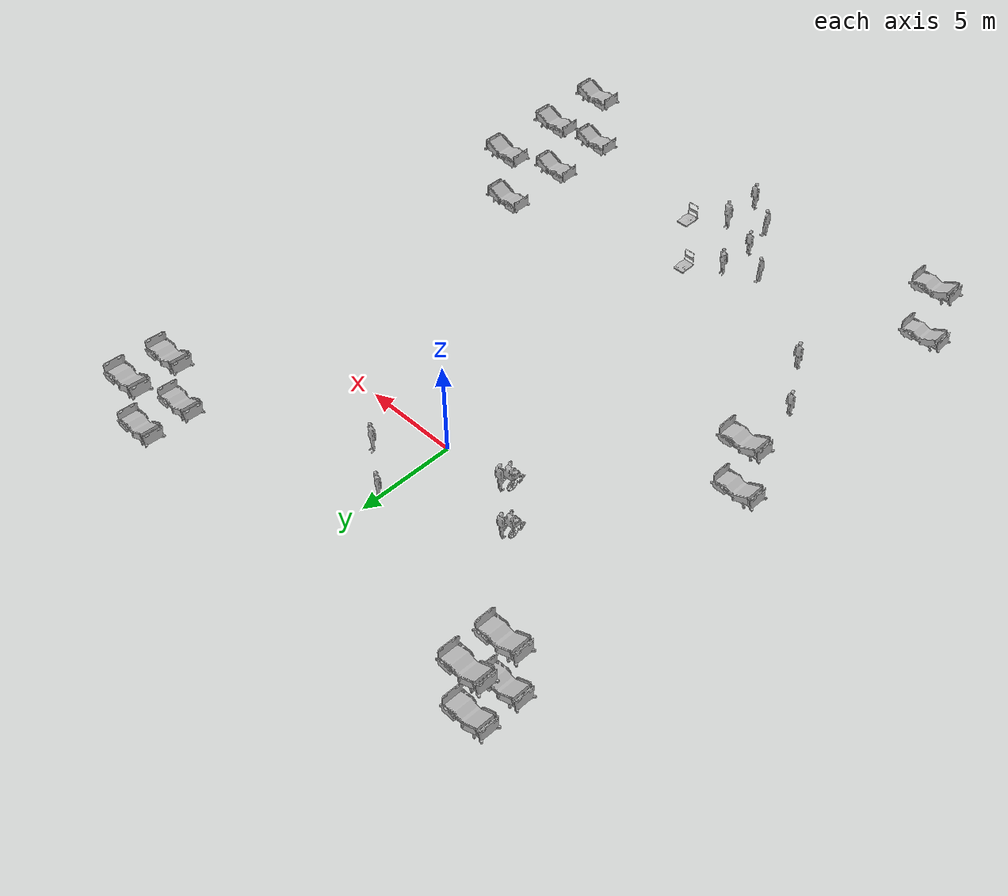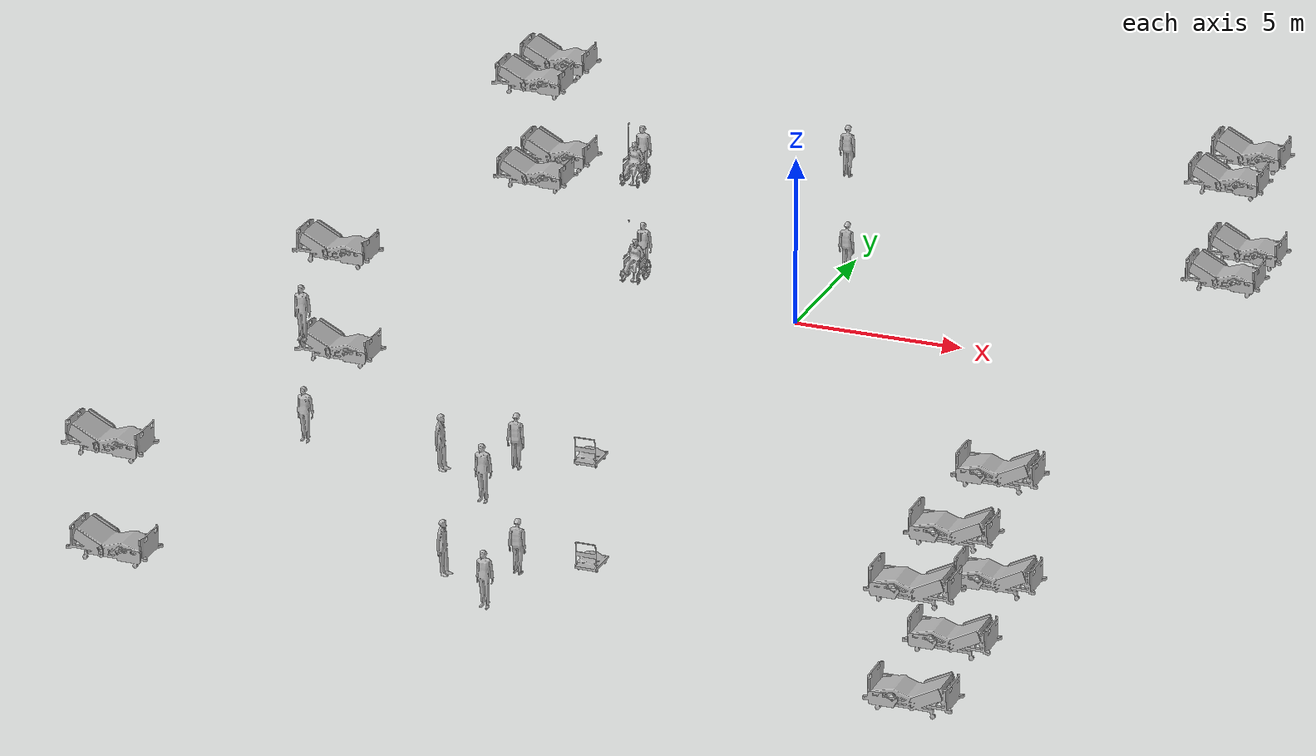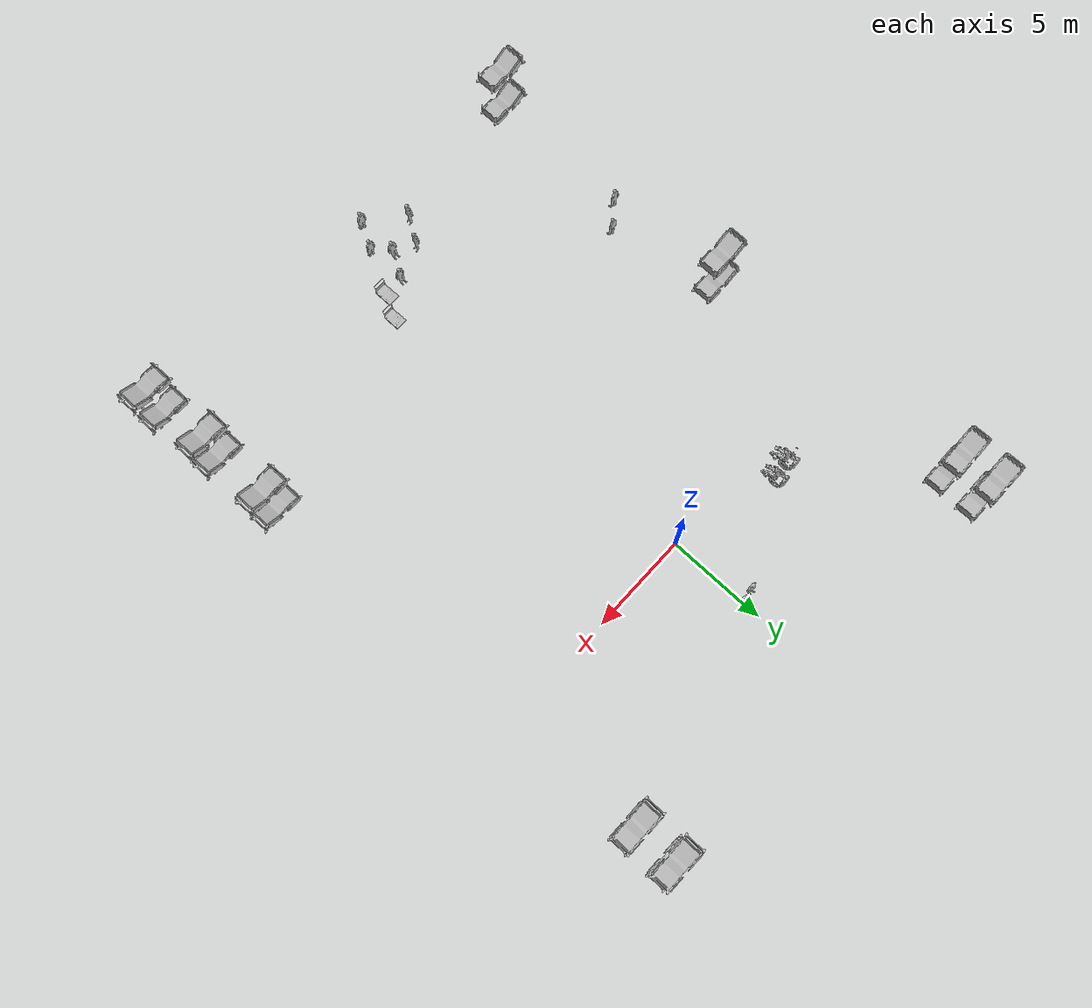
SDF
<sdf version="1.6">
 <world name="world">
  <gravity>0 0 -9.8</gravity>
  <physics default="0" name="default_physics" type="ode">
   <max_step_size>0.001</max_step_size>
   <real_time_factor>1</real_time_factor>
   <real_time_update_rate>1000</real_time_update_rate>
  </physics>
  <model name="CGMClassic_1">
   <include><uri>model://CGMClassic</uri></include>
   <pose>11.1777 -18.4129 0 0 0 -1.5656</pose>
  </model>
  <model name="CGMClassic_2">
   <include><uri>model://CGMClassic</uri></include>
   <pose>11.1179 -14.6493 0 0 0 -1.5656</pose>
  </model>
  <model name="OpScrubs_1">
   <include><uri>model://OpScrubs</uri></include>
   <pose>-9.61916 -12.5112 0 0 -0 0</pose>
  </model>
  <model name="OpScrubs_2">
   <include><uri>model://OpScrubs</uri></include>
   <pose>0.054597 4.05849 0 0 -0 3.12413</pose>
  </model>
  <model name="PatientWheelChair_1">
   <include><uri>model://PatientWheelChair</uri></include>
   <pose>-5.46091 1.23577 0 0 -0 0</pose>
  </model>
  <model name="OpScrubs_3">
   <include><uri>model://OpScrubs</uri></include>
   <pose>-5.38513 1.82526 0 0 -0 0</pose>
  </model>
  <model name="CGMClassic_3">
   <include><uri>model://CGMClassic</uri></include>
   <pose>-11.2304 -21.1134 0 0 -0 1.56641</pose>
  </model>
  <model name="CGMClassic_4">
   <include><uri>model://CGMClassic</uri></include>
   <pose>-11.0878 -7.00992 0 0 -0 1.56296</pose>
  </model>
  <model name="CGMClassic_5">
   <include><uri>model://CGMClassic</uri></include>
   <pose>-11.0106 8.9505 -0.008203 0.0004 -0.035019 1.56285</pose>
  </model>
  <model name="CGMClassic_6">
   <include><uri>model://CGMClassic</uri></include>
   <pose>-11.025 7.10335 0 0 -0.035021 1.57427</pose>
  </model>
  <model name="OpScrubs_4">
   <include><uri>model://OpScrubs</uri></include>
   <pose>-0.93616 -18.2252 0 0 0 -3.12479</pose>
  </model>
  <model name="OpScrubs_5">
   <include><uri>model://OpScrubs</uri></include>
   <pose>-2.66275 -18.9847 0 0 -0 1.57704</pose>
  </model>
  <model name="CGMClassic_7">
   <include><uri>model://CGMClassic</uri></include>
   <pose>10.6166 9.06291 -0.008203 0.0004 -0.035019 1.56285</pose>
  </model>
  <model name="CGMClassic_8">
   <include><uri>model://CGMClassic</uri></include>
   <pose>10.6006 6.90956 -0.008203 0.0004 -0.035019 1.56285</pose>
  </model>
  <model name="ParkingTrolleyMin_1">
   <include><uri>model://ParkingTrolleyMin</uri></include>
   <pose>0.715846 -17.1496 -0.000111 0 -0 0</pose>
  </model>
  <model name="OpScrubs_6">
   <include><uri>model://OpScrubs</uri></include>
   <pose>-0.947112 -20.3884 0 0 -0 0</pose>
  </model>
  <model name="CGMClassic_9">
   <include><uri>model://CGMClassic</uri></include>
   <pose>11.3613 -21.8867 0 0 0 -1.5656</pose>
  </model>
  <light name="ceiling_light_0" type="spot">
   <pose>-0.194533 13.8034 2.8 0 -0 0</pose>
   <diffuse>0.494118 0.494118 0.494118 1</diffuse>
   <specular>0.0941176 0.0941176 0.0941176 1</specular>
   <direction>0 0 -1</direction>
   <attenuation>
    <range>20</range>
    <constant>0.8</constant>
    <linear>0.1</linear>
    <quadratic>0.001</quadratic>
   </attenuation>
   <cast_shadows>0</cast_shadows>
   <spot><inner_angle>1.0</inner_angle><outer_angle>2.5</outer_angle><falloff>1</falloff></spot>
  </light>
  <light name="ceiling_light_1" type="spot">
   <pose>6.30005 8.9551 2.8 0 -0 0</pose>
   <diffuse>0.494118 0.494118 0.494118 1</diffuse>
   <specular>0.0941176 0.0941176 0.0941176 1</specular>
   <direction>0 0 -1</direction>
   <attenuation>
    <range>20</range>
    <constant>0.8</constant>
    <linear>0.1</linear>
    <quadratic>0.001</quadratic>
   </attenuation>
   <cast_shadows>0</cast_shadows>
   <spot><inner_angle>1.0</inner_angle><outer_angle>2.5</outer_angle><falloff>1</falloff></spot>
  </light>
  <light name="ceiling_light_2" type="spot">
   <pose>0.212387 2.1354 2.8 0 -0 0</pose>
   <diffuse>0.494118 0.494118 0.494118 1</diffuse>
   <specular>0.0941176 0.0941176 0.0941176 1</specular>
   <direction>0 0 -1</direction>
   <attenuation>
    <range>20</range>
    <constant>0.8</constant>
    <linear>0.1</linear>
    <quadratic>0.001</quadratic>
   </attenuation>
   <cast_shadows>0</cast_shadows>
   <spot><inner_angle>1.0</inner_angle><outer_angle>2.5</outer_angle><falloff>1</falloff></spot>
  </light>
  <light name="ceiling_light_3" type="spot">
   <pose>-5.81057 7.18327 2.8 0 -0 0</pose>
   <diffuse>0.494118 0.494118 0.494118 1</diffuse>
   <specular>0.0941176 0.0941176 0.0941176 1</specular>
   <direction>0 0 -1</direction>
   <attenuation>
    <range>20</range>
    <constant>0.8</constant>
    <linear>0.1</linear>
    <quadratic>0.001</quadratic>
   </attenuation>
   <cast_shadows>0</cast_shadows>
   <spot><inner_angle>1.0</inner_angle><outer_angle>2.5</outer_angle><falloff>1</falloff></spot>
  </light>
  <light name="ceiling_light_4" type="spot">
   <pose>-4.54396 -3.67312 2.8 0 -0 0</pose>
   <diffuse>0.494118 0.494118 0.494118 1</diffuse>
   <specular>0.0941176 0.0941176 0.0941176 1</specular>
   <direction>0 0 -1</direction>
   <attenuation>
    <range>20</range>
    <constant>0.8</constant>
    <linear>0.1</linear>
    <quadratic>0.001</quadratic>
   </attenuation>
   <cast_shadows>0</cast_shadows>
   <spot><inner_angle>1.0</inner_angle><outer_angle>2.5</outer_angle><falloff>1</falloff></spot>
  </light>
  <light name="ceiling_light_5" type="spot">
   <pose>-4.37087 -14.4782 2.8 0 -0 0</pose>
   <diffuse>0.494118 0.494118 0.494118 1</diffuse>
   <specular>0.0941176 0.0941176 0.0941176 1</specular>
   <direction>0 0 -1</direction>
   <attenuation>
    <range>20</range>
    <constant>0.8</constant>
    <linear>0.1</linear>
    <quadratic>0.001</quadratic>
   </attenuation>
   <cast_shadows>0</cast_shadows>
   <spot><inner_angle>1.0</inner_angle><outer_angle>2.5</outer_angle><falloff>1</falloff></spot>
  </light>
  <light name="ceiling_light_6" type="spot">
   <pose>-4.39457 -24.5382 2.8 0 -0 0</pose>
   <diffuse>0.494118 0.494118 0.494118 1</diffuse>
   <specular>0.0941176 0.0941176 0.0941176 1</specular>
   <direction>0 0 -1</direction>
   <attenuation>
    <range>20</range>
    <constant>0.8</constant>
    <linear>0.1</linear>
    <quadratic>0.001</quadratic>
   </attenuation>
   <cast_shadows>0</cast_shadows>
   <spot><inner_angle>1.0</inner_angle><outer_angle>2.5</outer_angle><falloff>1</falloff></spot>
  </light>
  <light name="ceiling_light_7" type="spot">
   <pose>-4.89858 -33.5301 2.8 0 -0 0</pose>
   <diffuse>0.494118 0.494118 0.494118 1</diffuse>
   <specular>0.0941176 0.0941176 0.0941176 1</specular>
   <direction>0 0 -1</direction>
   <attenuation>
    <range>20</range>
    <constant>0.8</constant>
    <linear>0.1</linear>
    <quadratic>0.001</quadratic>
   </attenuation>
   <cast_shadows>0</cast_shadows>
   <spot><inner_angle>1.0</inner_angle><outer_angle>2.5</outer_angle><falloff>1</falloff></spot>
  </light>
  <light name="ceiling_light_8" type="spot">
   <pose>4.63967 -24.4587 2.8 0 -0 0</pose>
   <diffuse>0.494118 0.494118 0.494118 1</diffuse>
   <specular>0.0941176 0.0941176 0.0941176 1</specular>
   <direction>0 0 -1</direction>
   <attenuation>
    <range>20</range>
    <constant>0.8</constant>
    <linear>0.1</linear>
    <quadratic>0.001</quadratic>
   </attenuation>
   <cast_shadows>0</cast_shadows>
   <spot><inner_angle>1.0</inner_angle><outer_angle>2.5</outer_angle><falloff>1</falloff></spot>
  </light>
  <light name="ceiling_light_9" type="spot">
   <pose>4.92633 -14.3923 2.8 0 -0 0</pose>
   <diffuse>0.494118 0.494118 0.494118 1</diffuse>
   <specular>0.0941176 0.0941176 0.0941176 1</specular>
   <direction>0 0 -1</direction>
   <attenuation>
    <range>20</range>
    <constant>0.8</constant>
    <linear>0.1</linear>
    <quadratic>0.001</quadratic>
   </attenuation>
   <cast_shadows>0</cast_shadows>
   <spot><inner_angle>1.0</inner_angle><outer_angle>2.5</outer_angle><falloff>1</falloff></spot>
  </light>
  <light name="ceiling_light_10" type="spot">
   <pose>4.7009 -3.77715 2.8 0 -0 0</pose>
   <diffuse>0.494118 0.494118 0.494118 1</diffuse>
   <specular>0.0941176 0.0941176 0.0941176 1</specular>
   <direction>0 0 -1</direction>
   <attenuation>
    <range>20</range>
    <constant>0.8</constant>
    <linear>0.1</linear>
    <quadratic>0.001</quadratic>
   </attenuation>
   <cast_shadows>0</cast_shadows>
   <spot><inner_angle>1.0</inner_angle><outer_angle>2.5</outer_angle><falloff>1</falloff></spot>
  </light>
  <light name="ceiling_light_11" type="spot">
   <pose>-9.02467 14.516 2.8 0 -0 0</pose>
   <diffuse>0.494118 0.494118 0.494118 1</diffuse>
   <specular>0.0941176 0.0941176 0.0941176 1</specular>
   <direction>0 0 -1</direction>
   <attenuation>
    <range>20</range>
    <constant>0.8</constant>
    <linear>0.1</linear>
    <quadratic>0.001</quadratic>
   </attenuation>
   <cast_shadows>0</cast_shadows>
   <spot><inner_angle>1.0</inner_angle><outer_angle>2.5</outer_angle><falloff>1</falloff></spot>
  </light>
  <light name="ceiling_light_12" type="spot">
   <pose>9.12495 14.4234 2.8 0 -0 0</pose>
   <diffuse>0.494118 0.494118 0.494118 1</diffuse>
   <specular>0.0941176 0.0941176 0.0941176 1</specular>
   <direction>0 0 -1</direction>
   <attenuation>
    <range>20</range>
    <constant>0.8</constant>
    <linear>0.1</linear>
    <quadratic>0.001</quadratic>
   </attenuation>
   <cast_shadows>0</cast_shadows>
   <spot><inner_angle>1.0</inner_angle><outer_angle>2.5</outer_angle><falloff>1</falloff></spot>
  </light>
  <light name="ceiling_light_13" type="spot">
   <pose>9.49822 -5.56304 2.8 0 -0 0</pose>
   <diffuse>0.494118 0.494118 0.494118 1</diffuse>
   <specular>0.0941176 0.0941176 0.0941176 1</specular>
   <direction>0 0 -1</direction>
   <attenuation>
    <range>20</range>
    <constant>0.8</constant>
    <linear>0.1</linear>
    <quadratic>0.001</quadratic>
   </attenuation>
   <cast_shadows>0</cast_shadows>
   <spot><inner_angle>1.0</inner_angle><outer_angle>2.5</outer_angle><falloff>1</falloff></spot>
  </light>
  <light name="ceiling_light_14" type="spot">
   <pose>-9.46806 -4.74662 2.8 0 -0 0</pose>
   <diffuse>0.494118 0.494118 0.494118 1</diffuse>
   <specular>0.0941176 0.0941176 0.0941176 1</specular>
   <direction>0 0 -1</direction>
   <attenuation>
    <range>20</range>
    <constant>0.8</constant>
    <linear>0.1</linear>
    <quadratic>0.001</quadratic>
   </attenuation>
   <cast_shadows>0</cast_shadows>
   <spot><inner_angle>1.0</inner_angle><outer_angle>2.5</outer_angle><falloff>1</falloff></spot>
  </light>
  <light name="ceiling_light_15" type="spot">
   <pose>-9.46885 -19.0778 2.8 0 -0 0</pose>
   <diffuse>0.494118 0.494118 0.494118 1</diffuse>
   <specular>0.0901961 0.0901961 0.0901961 1</specular>
   <direction>0 0 -1</direction>
   <attenuation>
    <range>20</range>
    <constant>0.8</constant>
    <linear>0.1</linear>
    <quadratic>0.001</quadratic>
   </attenuation>
   <cast_shadows>0</cast_shadows>
   <spot><inner_angle>1.0</inner_angle><outer_angle>2.5</outer_angle><falloff>1</falloff></spot>
  </light>
  <light name="ceiling_light_16" type="spot">
   <pose>-9.42207 -28.0708 2.8 0 -0 0</pose>
   <diffuse>0.494118 0.494118 0.494118 1</diffuse>
   <specular>0.0901961 0.0901961 0.0901961 1</specular>
   <direction>0 0 -1</direction>
   <attenuation>
    <range>20</range>
    <constant>0.8</constant>
    <linear>0.1</linear>
    <quadratic>0.001</quadratic>
   </attenuation>
   <cast_shadows>0</cast_shadows>
   <spot><inner_angle>1.0</inner_angle><outer_angle>2.5</outer_angle><falloff>1</falloff></spot>
  </light>
  <light name="ceiling_light_17" type="spot">
   <pose>1.66302 -11.4026 2.8 0 -0 0</pose>
   <diffuse>0.494118 0.494118 0.494118 1</diffuse>
   <specular>0.0901961 0.0901961 0.0901961 1</specular>
   <direction>0 0 -1</direction>
   <attenuation>
    <range>20</range>
    <constant>0.8</constant>
    <linear>0.1</linear>
    <quadratic>0.001</quadratic>
   </attenuation>
   <cast_shadows>0</cast_shadows>
   <spot><inner_angle>1.0</inner_angle><outer_angle>2.5</outer_angle><falloff>1</falloff></spot>
  </light>
  <light name="ceiling_light_18" type="spot">
   <pose>-1.64839 -19.4418 2.8 0 -0 0</pose>
   <diffuse>0.494118 0.494118 0.494118 1</diffuse>
   <specular>0.0901961 0.0901961 0.0901961 1</specular>
   <direction>0 0 -1</direction>
   <attenuation>
    <range>20</range>
    <constant>0.8</constant>
    <linear>0.1</linear>
    <quadratic>0.001</quadratic>
   </attenuation>
   <cast_shadows>0</cast_shadows>
   <spot><inner_angle>1.0</inner_angle><outer_angle>2.5</outer_angle><falloff>1</falloff></spot>
  </light>
  <light name="ceiling_light_19" type="spot">
   <pose>1.85793 -19.3856 2.8 0 -0 0</pose>
   <diffuse>0.494118 0.494118 0.494118 1</diffuse>
   <specular>0.0901961 0.0901961 0.0901961 1</specular>
   <direction>0 0 -1</direction>
   <attenuation>
    <range>20</range>
    <constant>0.8</constant>
    <linear>0.1</linear>
    <quadratic>0.001</quadratic>
   </attenuation>
   <cast_shadows>0</cast_shadows>
   <spot><inner_angle>1.0</inner_angle><outer_angle>2.5</outer_angle><falloff>1</falloff></spot>
  </light>
  <light name="ceiling_light_20" type="spot">
   <pose>-3.74086 -4.44142 2.8 0 -0 0</pose>
   <diffuse>0.494118 0.494118 0.494118 1</diffuse>
   <specular>0.0901961 0.0901961 0.0901961 1</specular>
   <direction>0 0 -1</direction>
   <attenuation>
    <range>20</range>
    <constant>0.8</constant>
    <linear>0.1</linear>
    <quadratic>0.001</quadratic>
   </attenuation>
   <cast_shadows>0</cast_shadows>
   <spot><inner_angle>1.0</inner_angle><outer_angle>2.5</outer_angle><falloff>1</falloff></spot>
  </light>
  <light name="ceiling_light_21" type="spot">
   <pose>-1.7167 -11.3151 2.8 0 -0 0</pose>
   <diffuse>0.494118 0.494118 0.494118 1</diffuse>
   <specular>0.0901961 0.0901961 0.0901961 1</specular>
   <direction>0 0 -1</direction>
   <attenuation>
    <range>20</range>
    <constant>0.8</constant>
    <linear>0.1</linear>
    <quadratic>0.001</quadratic>
   </attenuation>
   <cast_shadows>0</cast_shadows>
   <spot><inner_angle>1.0</inner_angle><outer_angle>2.5</outer_angle><falloff>1</falloff></spot>
  </light>
  <light name="ceiling_light_22" type="spot">
   <pose>-9.60933 -14.3792 2.8 0 -0 0</pose>
   <diffuse>0.494118 0.494118 0.494118 1</diffuse>
   <specular>0.0901961 0.0901961 0.0901961 1</specular>
   <direction>0 0 -1</direction>
   <attenuation>
    <range>20</range>
    <constant>0.8</constant>
    <linear>0.1</linear>
    <quadratic>0.001</quadratic>
   </attenuation>
   <cast_shadows>0</cast_shadows>
   <spot><inner_angle>1.0</inner_angle><outer_angle>2.5</outer_angle><falloff>1</falloff></spot>
  </light>
  <light name="ceiling_light_23" type="spot">
   <pose>-8.89647 0.199867 2.8 0 -0 0</pose>
   <diffuse>0.494118 0.494118 0.494118 1</diffuse>
   <specular>0.0901961 0.0901961 0.0901961 1</specular>
   <direction>0 0 -1</direction>
   <attenuation>
    <range>20</range>
    <constant>0.8</constant>
    <linear>0.1</linear>
    <quadratic>0.001</quadratic>
   </attenuation>
   <cast_shadows>0</cast_shadows>
   <spot><inner_angle>1.0</inner_angle><outer_angle>2.5</outer_angle><falloff>1</falloff></spot>
  </light>
  <light name="ceiling_light_24" type="spot">
   <pose>8.80325 1.99908 2.8 0 -0 0</pose>
   <diffuse>0.494118 0.494118 0.494118 1</diffuse>
   <specular>0.0901961 0.0901961 0.0901961 1</specular>
   <direction>0 0 -1</direction>
   <attenuation>
    <range>20</range>
    <constant>0.8</constant>
    <linear>0.1</linear>
    <quadratic>0.001</quadratic>
   </attenuation>
   <cast_shadows>0</cast_shadows>
   <spot><inner_angle>1.0</inner_angle><outer_angle>2.5</outer_angle><falloff>1</falloff></spot>
  </light>
  <light name="ceiling_light_25" type="spot">
   <pose>10.6153 10.2443 2.8 0 -0 0</pose>
   <diffuse>0.494118 0.494118 0.494118 1</diffuse>
   <specular>0.0941176 0.0941176 0.0941176 1</specular>
   <direction>0 0 -1</direction>
   <attenuation>
    <range>20</range>
    <constant>0.8</constant>
    <linear>0.1</linear>
    <quadratic>0.001</quadratic>
   </attenuation>
   <cast_shadows>0</cast_shadows>
   <spot><inner_angle>1.0</inner_angle><outer_angle>2.5</outer_angle><falloff>1</falloff></spot>
  </light>
  <light name="ceiling_light_26" type="spot">
   <pose>10.7071 5.95677 2.8 0 -0 0</pose>
   <diffuse>0.494118 0.494118 0.494118 1</diffuse>
   <specular>0.0941176 0.0941176 0.0941176 1</specular>
   <direction>0 0 -1</direction>
   <attenuation>
    <range>20</range>
    <constant>0.8</constant>
    <linear>0.1</linear>
    <quadratic>0.001</quadratic>
   </attenuation>
   <cast_shadows>0</cast_shadows>
   <spot><inner_angle>1.0</inner_angle><outer_angle>2.5</outer_angle><falloff>1</falloff></spot>
  </light>
  <light name="ceiling_light_27" type="spot">
   <pose>-10.6266 10.4097 2.8 0 -0 0</pose>
   <diffuse>0.494118 0.494118 0.494118 1</diffuse>
   <specular>0.0941176 0.0941176 0.0941176 1</specular>
   <direction>0 0 -1</direction>
   <attenuation>
    <range>20</range>
    <constant>0.8</constant>
    <linear>0.1</linear>
    <quadratic>0.001</quadratic>
   </attenuation>
   <cast_shadows>0</cast_shadows>
   <spot><inner_angle>1.0</inner_angle><outer_angle>2.5</outer_angle><falloff>1</falloff></spot>
  </light>
  <light name="ceiling_light_28" type="spot">
   <pose>-10.7712 6.05323 2.8 0 -0 0</pose>
   <diffuse>0.494118 0.494118 0.494118 1</diffuse>
   <specular>0.0941176 0.0941176 0.0941176 1</specular>
   <direction>0 0 -1</direction>
   <attenuation>
    <range>20</range>
    <constant>0.8</constant>
    <linear>0.1</linear>
    <quadratic>0.001</quadratic>
   </attenuation>
   <cast_shadows>0</cast_shadows>
   <spot><inner_angle>1.0</inner_angle><outer_angle>2.5</outer_angle><falloff>1</falloff></spot>
  </light>
  <light name="ceiling_light_29" type="spot">
   <pose>-9.64585 -30.5079 2.8 0 -0 0</pose>
   <diffuse>0.494118 0.494118 0.494118 1</diffuse>
   <specular>0.0941176 0.0941176 0.0941176 1</specular>
   <direction>0 0 -1</direction>
   <attenuation>
    <range>20</range>
    <constant>0.8</constant>
    <linear>0.1</linear>
    <quadratic>0.001</quadratic>
   </attenuation>
   <cast_shadows>0</cast_shadows>
   <spot><inner_angle>1.0</inner_angle><outer_angle>2.5</outer_angle><falloff>1</falloff></spot>
  </light>
  <light name="ceiling_light_30" type="spot">
   <pose>-11.9169 -24.6051 2.8 0 -0 0</pose>
   <diffuse>0.494118 0.494118 0.494118 1</diffuse>
   <specular>0.0941176 0.0941176 0.0941176 1</specular>
   <direction>0 0 -1</direction>
   <attenuation>
    <range>20</range>
    <constant>0.8</constant>
    <linear>0.1</linear>
    <quadratic>0.001</quadratic>
   </attenuation>
   <cast_shadows>0</cast_shadows>
   <spot><inner_angle>1.0</inner_angle><outer_angle>2.5</outer_angle><falloff>1</falloff></spot>
  </light>
  <light name="ceiling_light_31" type="spot">
   <pose>-4.29701 11.4852 2.8 0 -0 0</pose>
   <diffuse>0.494118 0.494118 0.494118 1</diffuse>
   <specular>0.0901961 0.0901961 0.0901961 1</specular>
   <direction>0 0 -1</direction>
   <attenuation>
    <range>20</range>
    <constant>0.8</constant>
    <linear>0.1</linear>
    <quadratic>0.001</quadratic>
   </attenuation>
   <cast_shadows>0</cast_shadows>
   <spot><inner_angle>1.0</inner_angle><outer_angle>2.5</outer_angle><falloff>1</falloff></spot>
  </light>
  <light name="ceiling_light_32" type="spot">
   <pose>3.41329 12.0406 2.8 0 -0 0</pose>
   <diffuse>0.494118 0.494118 0.494118 1</diffuse>
   <specular>0.0901961 0.0901961 0.0901961 1</specular>
   <direction>0 0 -1</direction>
   <attenuation>
    <range>20</range>
    <constant>0.8</constant>
    <linear>0.1</linear>
    <quadratic>0.001</quadratic>
   </attenuation>
   <cast_shadows>0</cast_shadows>
   <spot><inner_angle>1.0</inner_angle><outer_angle>2.5</outer_angle><falloff>1</falloff></spot>
  </light>
  <light name="ceiling_light_33" type="spot">
   <pose>-0.181496 7.28878 2.8 0 -0 0</pose>
   <diffuse>0.494118 0.494118 0.494118 1</diffuse>
   <specular>0.0901961 0.0901961 0.0901961 1</specular>
   <direction>0 0 -1</direction>
   <attenuation>
    <range>20</range>
    <constant>0.8</constant>
    <linear>0.1</linear>
    <quadratic>0.001</quadratic>
   </attenuation>
   <cast_shadows>0</cast_shadows>
   <spot><inner_angle>1.0</inner_angle><outer_angle>2.5</outer_angle><falloff>1</falloff></spot>
  </light>
  <model name="floor_1_CGMClassic_1">
   <include><uri>model://CGMClassic</uri></include>
   <pose>11.1777 -18.4129 3.0 0 0 -1.5656</pose>
  </model>
  <model name="floor_1_CGMClassic_2">
   <include><uri>model://CGMClassic</uri></include>
   <pose>11.1179 -14.6493 3.0 0 0 -1.5656</pose>
  </model>
  <model name="floor_1_OpScrubs_1">
   <include><uri>model://OpScrubs</uri></include>
   <pose>-9.61916 -12.5112 3.0 0 -0 0</pose>
  </model>
  <model name="floor_1_OpScrubs_2">
   <include><uri>model://OpScrubs</uri></include>
   <pose>0.054597 4.05849 3.0 0 -0 3.12413</pose>
  </model>
  <model name="floor_1_PatientWheelChair_1">
   <include><uri>model://PatientWheelChair</uri></include>
   <pose>-5.46091 1.23577 3.0 0 -0 0</pose>
  </model>
  <model name="floor_1_OpScrubs_3">
   <include><uri>model://OpScrubs</uri></include>
   <pose>-5.38513 1.82526 3.0 0 -0 0</pose>
  </model>
  <model name="floor_1_CGMClassic_3">
   <include><uri>model://CGMClassic</uri></include>
   <pose>-11.2304 -21.1134 3.0 0 -0 1.56641</pose>
  </model>
  <model name="floor_1_CGMClassic_4">
   <include><uri>model://CGMClassic</uri></include>
   <pose>-11.0878 -7.00992 3.0 0 -0 1.56296</pose>
  </model>
  <model name="floor_1_CGMClassic_5">
   <include><uri>model://CGMClassic</uri></include>
   <pose>-11.0106 8.9505 2.991797 0.0004 -0.035019 1.56285</pose>
  </model>
  <model name="floor_1_CGMClassic_6">
   <include><uri>model://CGMClassic</uri></include>
   <pose>-11.025 7.10335 3.0 0 -0.035021 1.57427</pose>
  </model>
  <model name="floor_1_OpScrubs_4">
   <include><uri>model://OpScrubs</uri></include>
   <pose>-0.93616 -18.2252 3.0 0 0 -3.12479</pose>
  </model>
  <model name="floor_1_OpScrubs_5">
   <include><uri>model://OpScrubs</uri></include>
   <pose>-2.66275 -18.9847 3.0 0 -0 1.57704</pose>
  </model>
  <model name="floor_1_CGMClassic_7">
   <include><uri>model://CGMClassic</uri></include>
   <pose>10.6166 9.06291 2.991797 0.0004 -0.035019 1.56285</pose>
  </model>
  <model name="floor_1_CGMClassic_8">
   <include><uri>model://CGMClassic</uri></include>
   <pose>10.6006 6.90956 2.991797 0.0004 -0.035019 1.56285</pose>
  </model>
  <model name="floor_1_ParkingTrolleyMin_1">
   <include><uri>model://ParkingTrolleyMin</uri></include>
   <pose>0.715846 -17.1496 2.999889 0 -0 0</pose>
  </model>
  <model name="floor_1_OpScrubs_6">
   <include><uri>model://OpScrubs</uri></include>
   <pose>-0.947112 -20.3884 3.0 0 -0 0</pose>
  </model>
  <model name="floor_1_CGMClassic_9">
   <include><uri>model://CGMClassic</uri></include>
   <pose>11.3613 -21.8867 3.0 0 0 -1.5656</pose>
  </model>
  <light name="floor_1_ceiling_light_0" type="spot">
   <pose>-0.194533 13.8034 5.8 0 -0 0</pose>
   <diffuse>0.494118 0.494118 0.494118 1</diffuse>
   <specular>0.0941176 0.0941176 0.0941176 1</specular>
   <direction>0 0 -1</direction>
   <attenuation>
    <range>20</range>
    <constant>0.8</constant>
    <linear>0.1</linear>
    <quadratic>0.001</quadratic>
   </attenuation>
   <cast_shadows>0</cast_shadows>
   <spot><inner_angle>1.0</inner_angle><outer_angle>2.5</outer_angle><falloff>1</falloff></spot>
  </light>
  <light name="floor_1_ceiling_light_1" type="spot">
   <pose>6.30005 8.9551 5.8 0 -0 0</pose>
   <diffuse>0.494118 0.494118 0.494118 1</diffuse>
   <specular>0.0941176 0.0941176 0.0941176 1</specular>
   <direction>0 0 -1</direction>
   <attenuation>
    <range>20</range>
    <constant>0.8</constant>
    <linear>0.1</linear>
    <quadratic>0.001</quadratic>
   </attenuation>
   <cast_shadows>0</cast_shadows>
   <spot><inner_angle>1.0</inner_angle><outer_angle>2.5</outer_angle><falloff>1</falloff></spot>
  </light>
  <light name="floor_1_ceiling_light_2" type="spot">
   <pose>0.212387 2.1354 5.8 0 -0 0</pose>
   <diffuse>0.494118 0.494118 0.494118 1</diffuse>
   <specular>0.0941176 0.0941176 0.0941176 1</specular>
   <direction>0 0 -1</direction>
   <attenuation>
    <range>20</range>
    <constant>0.8</constant>
    <linear>0.1</linear>
    <quadratic>0.001</quadratic>
   </attenuation>
   <cast_shadows>0</cast_shadows>
   <spot><inner_angle>1.0</inner_angle><outer_angle>2.5</outer_angle><falloff>1</falloff></spot>
  </light>
  <light name="floor_1_ceiling_light_3" type="spot">
   <pose>-5.81057 7.18327 5.8 0 -0 0</pose>
   <diffuse>0.494118 0.494118 0.494118 1</diffuse>
   <specular>0.0941176 0.0941176 0.0941176 1</specular>
   <direction>0 0 -1</direction>
   <attenuation>
    <range>20</range>
    <constant>0.8</constant>
    <linear>0.1</linear>
    <quadratic>0.001</quadratic>
   </attenuation>
   <cast_shadows>0</cast_shadows>
   <spot><inner_angle>1.0</inner_angle><outer_angle>2.5</outer_angle><falloff>1</falloff></spot>
  </light>
  <light name="floor_1_ceiling_light_4" type="spot">
   <pose>-4.54396 -3.67312 5.8 0 -0 0</pose>
   <diffuse>0.494118 0.494118 0.494118 1</diffuse>
   <specular>0.0941176 0.0941176 0.0941176 1</specular>
   <direction>0 0 -1</direction>
   <attenuation>
    <range>20</range>
    <constant>0.8</constant>
    <linear>0.1</linear>
    <quadratic>0.001</quadratic>
   </attenuation>
   <cast_shadows>0</cast_shadows>
   <spot><inner_angle>1.0</inner_angle><outer_angle>2.5</outer_angle><falloff>1</falloff></spot>
  </light>
  <light name="floor_1_ceiling_light_5" type="spot">
   <pose>-4.37087 -14.4782 5.8 0 -0 0</pose>
   <diffuse>0.494118 0.494118 0.494118 1</diffuse>
   <specular>0.0941176 0.0941176 0.0941176 1</specular>
   <direction>0 0 -1</direction>
   <attenuation>
    <range>20</range>
    <constant>0.8</constant>
    <linear>0.1</linear>
    <quadratic>0.001</quadratic>
   </attenuation>
   <cast_shadows>0</cast_shadows>
   <spot><inner_angle>1.0</inner_angle><outer_angle>2.5</outer_angle><falloff>1</falloff></spot>
  </light>
  <light name="floor_1_ceiling_light_6" type="spot">
   <pose>-4.39457 -24.5382 5.8 0 -0 0</pose>
   <diffuse>0.494118 0.494118 0.494118 1</diffuse>
   <specular>0.0941176 0.0941176 0.0941176 1</specular>
   <direction>0 0 -1</direction>
   <attenuation>
    <range>20</range>
    <constant>0.8</constant>
    <linear>0.1</linear>
    <quadratic>0.001</quadratic>
   </attenuation>
   <cast_shadows>0</cast_shadows>
   <spot><inner_angle>1.0</inner_angle><outer_angle>2.5</outer_angle><falloff>1</falloff></spot>
  </light>
  <light name="floor_1_ceiling_light_7" type="spot">
   <pose>-4.89858 -33.5301 5.8 0 -0 0</pose>
   <diffuse>0.494118 0.494118 0.494118 1</diffuse>
   <specular>0.0941176 0.0941176 0.0941176 1</specular>
   <direction>0 0 -1</direction>
   <attenuation>
    <range>20</range>
    <constant>0.8</constant>
    <linear>0.1</linear>
    <quadratic>0.001</quadratic>
   </attenuation>
   <cast_shadows>0</cast_shadows>
   <spot><inner_angle>1.0</inner_angle><outer_angle>2.5</outer_angle><falloff>1</falloff></spot>
  </light>
  <light name="floor_1_ceiling_light_8" type="spot">
   <pose>4.63967 -24.4587 5.8 0 -0 0</pose>
   <diffuse>0.494118 0.494118 0.494118 1</diffuse>
   <specular>0.0941176 0.0941176 0.0941176 1</specular>
   <direction>0 0 -1</direction>
   <attenuation>
    <range>20</range>
    <constant>0.8</constant>
    <linear>0.1</linear>
    <quadratic>0.001</quadratic>
   </attenuation>
   <cast_shadows>0</cast_shadows>
   <spot><inner_angle>1.0</inner_angle><outer_angle>2.5</outer_angle><falloff>1</falloff></spot>
  </light>
  <light name="floor_1_ceiling_light_9" type="spot">
   <pose>4.92633 -14.3923 5.8 0 -0 0</pose>
   <diffuse>0.494118 0.494118 0.494118 1</diffuse>
   <specular>0.0941176 0.0941176 0.0941176 1</specular>
   <direction>0 0 -1</direction>
   <attenuation>
    <range>20</range>
    <constant>0.8</constant>
    <linear>0.1</linear>
    <quadratic>0.001</quadratic>
   </attenuation>
   <cast_shadows>0</cast_shadows>
   <spot><inner_angle>1.0</inner_angle><outer_angle>2.5</outer_angle><falloff>1</falloff></spot>
  </light>
  <light name="floor_1_ceiling_light_10" type="spot">
   <pose>4.7009 -3.77715 5.8 0 -0 0</pose>
   <diffuse>0.494118 0.494118 0.494118 1</diffuse>
   <specular>0.0941176 0.0941176 0.0941176 1</specular>
   <direction>0 0 -1</direction>
   <attenuation>
    <range>20</range>
    <constant>0.8</constant>
    <linear>0.1</linear>
    <quadratic>0.001</quadratic>
   </attenuation>
   <cast_shadows>0</cast_shadows>
   <spot><inner_angle>1.0</inner_angle><outer_angle>2.5</outer_angle><falloff>1</falloff></spot>
  </light>
  <light name="floor_1_ceiling_light_11" type="spot">
   <pose>-9.02467 14.516 5.8 0 -0 0</pose>
   <diffuse>0.494118 0.494118 0.494118 1</diffuse>
   <specular>0.0941176 0.0941176 0.0941176 1</specular>
   <direction>0 0 -1</direction>
   <attenuation>
    <range>20</range>
    <constant>0.8</constant>
    <linear>0.1</linear>
    <quadratic>0.001</quadratic>
   </attenuation>
   <cast_shadows>0</cast_shadows>
   <spot><inner_angle>1.0</inner_angle><outer_angle>2.5</outer_angle><falloff>1</falloff></spot>
  </light>
  <light name="floor_1_ceiling_light_12" type="spot">
   <pose>9.12495 14.4234 5.8 0 -0 0</pose>
   <diffuse>0.494118 0.494118 0.494118 1</diffuse>
   <specular>0.0941176 0.0941176 0.0941176 1</specular>
   <direction>0 0 -1</direction>
   <attenuation>
    <range>20</range>
    <constant>0.8</constant>
    <linear>0.1</linear>
    <quadratic>0.001</quadratic>
   </attenuation>
   <cast_shadows>0</cast_shadows>
   <spot><inner_angle>1.0</inner_angle><outer_angle>2.5</outer_angle><falloff>1</falloff></spot>
  </light>
  <light name="floor_1_ceiling_light_13" type="spot">
   <pose>9.49822 -5.56304 5.8 0 -0 0</pose>
   <diffuse>0.494118 0.494118 0.494118 1</diffuse>
   <specular>0.0941176 0.0941176 0.0941176 1</specular>
   <direction>0 0 -1</direction>
   <attenuation>
    <range>20</range>
    <constant>0.8</constant>
    <linear>0.1</linear>
    <quadratic>0.001</quadratic>
   </attenuation>
   <cast_shadows>0</cast_shadows>
   <spot><inner_angle>1.0</inner_angle><outer_angle>2.5</outer_angle><falloff>1</falloff></spot>
  </light>
  <light name="floor_1_ceiling_light_14" type="spot">
   <pose>-9.46806 -4.74662 5.8 0 -0 0</pose>
   <diffuse>0.494118 0.494118 0.494118 1</diffuse>
   <specular>0.0941176 0.0941176 0.0941176 1</specular>
   <direction>0 0 -1</direction>
   <attenuation>
    <range>20</range>
    <constant>0.8</constant>
    <linear>0.1</linear>
    <quadratic>0.001</quadratic>
   </attenuation>
   <cast_shadows>0</cast_shadows>
   <spot><inner_angle>1.0</inner_angle><outer_angle>2.5</outer_angle><falloff>1</falloff></spot>
  </light>
  <light name="floor_1_ceiling_light_15" type="spot">
   <pose>-9.46885 -19.0778 5.8 0 -0 0</pose>
   <diffuse>0.494118 0.494118 0.494118 1</diffuse>
   <specular>0.0901961 0.0901961 0.0901961 1</specular>
   <direction>0 0 -1</direction>
   <attenuation>
    <range>20</range>
    <constant>0.8</constant>
    <linear>0.1</linear>
    <quadratic>0.001</quadratic>
   </attenuation>
   <cast_shadows>0</cast_shadows>
   <spot><inner_angle>1.0</inner_angle><outer_angle>2.5</outer_angle><falloff>1</falloff></spot>
  </light>
  <light name="floor_1_ceiling_light_16" type="spot">
   <pose>-9.42207 -28.0708 5.8 0 -0 0</pose>
   <diffuse>0.494118 0.494118 0.494118 1</diffuse>
   <specular>0.0901961 0.0901961 0.0901961 1</specular>
   <direction>0 0 -1</direction>
   <attenuation>
    <range>20</range>
    <constant>0.8</constant>
    <linear>0.1</linear>
    <quadratic>0.001</quadratic>
   </attenuation>
   <cast_shadows>0</cast_shadows>
   <spot><inner_angle>1.0</inner_angle><outer_angle>2.5</outer_angle><falloff>1</falloff></spot>
  </light>
  <light name="floor_1_ceiling_light_17" type="spot">
   <pose>1.66302 -11.4026 5.8 0 -0 0</pose>
   <diffuse>0.494118 0.494118 0.494118 1</diffuse>
   <specular>0.0901961 0.0901961 0.0901961 1</specular>
   <direction>0 0 -1</direction>
   <attenuation>
    <range>20</range>
    <constant>0.8</constant>
    <linear>0.1</linear>
    <quadratic>0.001</quadratic>
   </attenuation>
   <cast_shadows>0</cast_shadows>
   <spot><inner_angle>1.0</inner_angle><outer_angle>2.5</outer_angle><falloff>1</falloff></spot>
  </light>
  <light name="floor_1_ceiling_light_18" type="spot">
   <pose>-1.64839 -19.4418 5.8 0 -0 0</pose>
   <diffuse>0.494118 0.494118 0.494118 1</diffuse>
   <specular>0.0901961 0.0901961 0.0901961 1</specular>
   <direction>0 0 -1</direction>
   <attenuation>
    <range>20</range>
    <constant>0.8</constant>
    <linear>0.1</linear>
    <quadratic>0.001</quadratic>
   </attenuation>
   <cast_shadows>0</cast_shadows>
   <spot><inner_angle>1.0</inner_angle><outer_angle>2.5</outer_angle><falloff>1</falloff></spot>
  </light>
  <light name="floor_1_ceiling_light_19" type="spot">
   <pose>1.85793 -19.3856 5.8 0 -0 0</pose>
   <diffuse>0.494118 0.494118 0.494118 1</diffuse>
   <specular>0.0901961 0.0901961 0.0901961 1</specular>
   <direction>0 0 -1</direction>
   <attenuation>
    <range>20</range>
    <constant>0.8</constant>
    <linear>0.1</linear>
    <quadratic>0.001</quadratic>
   </attenuation>
   <cast_shadows>0</cast_shadows>
   <spot><inner_angle>1.0</inner_angle><outer_angle>2.5</outer_angle><falloff>1</falloff></spot>
  </light>
  <light name="floor_1_ceiling_light_20" type="spot">
   <pose>-3.74086 -4.44142 5.8 0 -0 0</pose>
   <diffuse>0.494118 0.494118 0.494118 1</diffuse>
   <specular>0.0901961 0.0901961 0.0901961 1</specular>
   <direction>0 0 -1</direction>
   <attenuation>
    <range>20</range>
    <constant>0.8</constant>
    <linear>0.1</linear>
    <quadratic>0.001</quadratic>
   </attenuation>
   <cast_shadows>0</cast_shadows>
   <spot><inner_angle>1.0</inner_angle><outer_angle>2.5</outer_angle><falloff>1</falloff></spot>
  </light>
  <light name="floor_1_ceiling_light_21" type="spot">
   <pose>-1.7167 -11.3151 5.8 0 -0 0</pose>
   <diffuse>0.494118 0.494118 0.494118 1</diffuse>
   <specular>0.0901961 0.0901961 0.0901961 1</specular>
   <direction>0 0 -1</direction>
   <attenuation>
    <range>20</range>
    <constant>0.8</constant>
    <linear>0.1</linear>
    <quadratic>0.001</quadratic>
   </attenuation>
   <cast_shadows>0</cast_shadows>
   <spot><inner_angle>1.0</inner_angle><outer_angle>2.5</outer_angle><falloff>1</falloff></spot>
  </light>
  <light name="floor_1_ceiling_light_22" type="spot">
   <pose>-9.60933 -14.3792 5.8 0 -0 0</pose>
   <diffuse>0.494118 0.494118 0.494118 1</diffuse>
   <specular>0.0901961 0.0901961 0.0901961 1</specular>
   <direction>0 0 -1</direction>
   <attenuation>
    <range>20</range>
    <constant>0.8</constant>
    <linear>0.1</linear>
    <quadratic>0.001</quadratic>
   </attenuation>
   <cast_shadows>0</cast_shadows>
   <spot><inner_angle>1.0</inner_angle><outer_angle>2.5</outer_angle><falloff>1</falloff></spot>
  </light>
  <light name="floor_1_ceiling_light_23" type="spot">
   <pose>-8.89647 0.199867 5.8 0 -0 0</pose>
   <diffuse>0.494118 0.494118 0.494118 1</diffuse>
   <specular>0.0901961 0.0901961 0.0901961 1</specular>
   <direction>0 0 -1</direction>
   <attenuation>
    <range>20</range>
    <constant>0.8</constant>
    <linear>0.1</linear>
    <quadratic>0.001</quadratic>
   </attenuation>
   <cast_shadows>0</cast_shadows>
   <spot><inner_angle>1.0</inner_angle><outer_angle>2.5</outer_angle><falloff>1</falloff></spot>
  </light>
  <light name="floor_1_ceiling_light_24" type="spot">
   <pose>8.80325 1.99908 5.8 0 -0 0</pose>
   <diffuse>0.494118 0.494118 0.494118 1</diffuse>
   <specular>0.0901961 0.0901961 0.0901961 1</specular>
   <direction>0 0 -1</direction>
   <attenuation>
    <range>20</range>
    <constant>0.8</constant>
    <linear>0.1</linear>
    <quadratic>0.001</quadratic>
   </attenuation>
   <cast_shadows>0</cast_shadows>
   <spot><inner_angle>1.0</inner_angle><outer_angle>2.5</outer_angle><falloff>1</falloff></spot>
  </light>
  <light name="floor_1_ceiling_light_25" type="spot">
   <pose>10.6153 10.2443 5.8 0 -0 0</pose>
   <diffuse>0.494118 0.494118 0.494118 1</diffuse>
   <specular>0.0941176 0.0941176 0.0941176 1</specular>
   <direction>0 0 -1</direction>
   <attenuation>
    <range>20</range>
    <constant>0.8</constant>
    <linear>0.1</linear>
    <quadratic>0.001</quadratic>
   </attenuation>
   <cast_shadows>0</cast_shadows>
   <spot><inner_angle>1.0</inner_angle><outer_angle>2.5</outer_angle><falloff>1</falloff></spot>
  </light>
  <light name="floor_1_ceiling_light_26" type="spot">
   <pose>10.7071 5.95677 5.8 0 -0 0</pose>
   <diffuse>0.494118 0.494118 0.494118 1</diffuse>
   <specular>0.0941176 0.0941176 0.0941176 1</specular>
   <direction>0 0 -1</direction>
   <attenuation>
    <range>20</range>
    <constant>0.8</constant>
    <linear>0.1</linear>
    <quadratic>0.001</quadratic>
   </attenuation>
   <cast_shadows>0</cast_shadows>
   <spot><inner_angle>1.0</inner_angle><outer_angle>2.5</outer_angle><falloff>1</falloff></spot>
  </light>
  <light name="floor_1_ceiling_light_27" type="spot">
   <pose>-10.6266 10.4097 5.8 0 -0 0</pose>
   <diffuse>0.494118 0.494118 0.494118 1</diffuse>
   <specular>0.0941176 0.0941176 0.0941176 1</specular>
   <direction>0 0 -1</direction>
   <attenuation>
    <range>20</range>
    <constant>0.8</constant>
    <linear>0.1</linear>
    <quadratic>0.001</quadratic>
   </attenuation>
   <cast_shadows>0</cast_shadows>
   <spot><inner_angle>1.0</inner_angle><outer_angle>2.5</outer_angle><falloff>1</falloff></spot>
  </light>
  <light name="floor_1_ceiling_light_28" type="spot">
   <pose>-10.7712 6.05323 5.8 0 -0 0</pose>
   <diffuse>0.494118 0.494118 0.494118 1</diffuse>
   <specular>0.0941176 0.0941176 0.0941176 1</specular>
   <direction>0 0 -1</direction>
   <attenuation>
    <range>20</range>
    <constant>0.8</constant>
    <linear>0.1</linear>
    <quadratic>0.001</quadratic>
   </attenuation>
   <cast_shadows>0</cast_shadows>
   <spot><inner_angle>1.0</inner_angle><outer_angle>2.5</outer_angle><falloff>1</falloff></spot>
  </light>
  <light name="floor_1_ceiling_light_29" type="spot">
   <pose>-9.64585 -30.5079 5.8 0 -0 0</pose>
   <diffuse>0.494118 0.494118 0.494118 1</diffuse>
   <specular>0.0941176 0.0941176 0.0941176 1</specular>
   <direction>0 0 -1</direction>
   <attenuation>
    <range>20</range>
    <constant>0.8</constant>
    <linear>0.1</linear>
    <quadratic>0.001</quadratic>
   </attenuation>
   <cast_shadows>0</cast_shadows>
   <spot><inner_angle>1.0</inner_angle><outer_angle>2.5</outer_angle><falloff>1</falloff></spot>
  </light>
  <light name="floor_1_ceiling_light_30" type="spot">
   <pose>-11.9169 -24.6051 5.8 0 -0 0</pose>
   <diffuse>0.494118 0.494118 0.494118 1</diffuse>
   <specular>0.0941176 0.0941176 0.0941176 1</specular>
   <direction>0 0 -1</direction>
   <attenuation>
    <range>20</range>
    <constant>0.8</constant>
    <linear>0.1</linear>
    <quadratic>0.001</quadratic>
   </attenuation>
   <cast_shadows>0</cast_shadows>
   <spot><inner_angle>1.0</inner_angle><outer_angle>2.5</outer_angle><falloff>1</falloff></spot>
  </light>
  <light name="floor_1_ceiling_light_31" type="spot">
   <pose>-4.29701 11.4852 5.8 0 -0 0</pose>
   <diffuse>0.494118 0.494118 0.494118 1</diffuse>
   <specular>0.0901961 0.0901961 0.0901961 1</specular>
   <direction>0 0 -1</direction>
   <attenuation>
    <range>20</range>
    <constant>0.8</constant>
    <linear>0.1</linear>
    <quadratic>0.001</quadratic>
   </attenuation>
   <cast_shadows>0</cast_shadows>
   <spot><inner_angle>1.0</inner_angle><outer_angle>2.5</outer_angle><falloff>1</falloff></spot>
  </light>
  <light name="floor_1_ceiling_light_32" type="spot">
   <pose>3.41329 12.0406 5.8 0 -0 0</pose>
   <diffuse>0.494118 0.494118 0.494118 1</diffuse>
   <specular>0.0901961 0.0901961 0.0901961 1</specular>
   <direction>0 0 -1</direction>
   <attenuation>
    <range>20</range>
    <constant>0.8</constant>
    <linear>0.1</linear>
    <quadratic>0.001</quadratic>
   </attenuation>
   <cast_shadows>0</cast_shadows>
   <spot><inner_angle>1.0</inner_angle><outer_angle>2.5</outer_angle><falloff>1</falloff></spot>
  </light>
  <light name="floor_1_ceiling_light_33" type="spot">
   <pose>-0.181496 7.28878 5.8 0 -0 0</pose>
   <diffuse>0.494118 0.494118 0.494118 1</diffuse>
   <specular>0.0901961 0.0901961 0.0901961 1</specular>
   <direction>0 0 -1</direction>
   <attenuation>
    <range>20</range>
    <constant>0.8</constant>
    <linear>0.1</linear>
    <quadratic>0.001</quadratic>
   </attenuation>
   <cast_shadows>0</cast_shadows>
   <spot><inner_angle>1.0</inner_angle><outer_angle>2.5</outer_angle><falloff>1</falloff></spot>
  </light>
 </world>
</sdf>

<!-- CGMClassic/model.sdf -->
<sdf version="1.6">
  <model name="CGMClassic">
   <static>true</static>
    <link name="body">
      <pose>0 0 0 0 0 0</pose>

      <visual name="visual">
        <geometry>
          <mesh>
            <uri>model://CGMClassic/meshes/CGMClassic.obj</uri>
            <scale>0.01 0.01 0.01</scale>
          </mesh>
        </geometry>
      </visual>

      <collision name="collision">
        <geometry>
          <mesh>
            <uri>model://CGMClassic/meshes/CGMClassic.obj</uri>
            <scale>0.01 0.01 0.01</scale>
          </mesh>
        </geometry>
      </collision>

    </link>
  </model>
</sdf>

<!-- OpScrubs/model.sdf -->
<sdf version="1.6">
  <model name="OpScrubs">
   <static>true</static>
    <link name="body">
      <pose>0 0 0 0 0 0</pose>

      <visual name="visual">
        <geometry>
          <mesh>
            <uri>model://OpScrubs/meshes/OpScrubs.obj</uri>
          </mesh>
        </geometry>
      </visual>

      <collision name="collision">
        <geometry>
          <mesh>
            <uri>model://OpScrubs/meshes/OpScrubs_Col.obj</uri>
          </mesh>
        </geometry>
      </collision>

    </link>
  </model>
</sdf>

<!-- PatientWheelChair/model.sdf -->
<sdf version="1.6">
  <model name="PatientWheelChair">
   <static>true</static>
    <link name="body">
      <pose>0 0 0 0 0 0</pose>

      <visual name="visual">
        <geometry>
          <mesh>
            <uri>model://PatientWheelChair/meshes/PatientWheelChair.obj</uri>
          </mesh>
        </geometry>
      </visual>

      <collision name="collision">
        <geometry>
          <mesh>
            <uri>model://PatientWheelChair/meshes/PatientWheelChair_Col.obj</uri>
          </mesh>
        </geometry>
      </collision>

    </link>
  </model>
</sdf>

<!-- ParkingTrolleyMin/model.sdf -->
<sdf version="1.6">
  <model name="ParkingTrolleyMin">
    <link name="body">
      <pose>0 0 0 0 0 0</pose>

        <visual name="visual">
          <pose>0 0 0 0 0 0</pose>
          <geometry>
            <mesh><uri>model://ParkingTrolleyMin/meshes/trolleymin.obj</uri></mesh>
          </geometry>
        </visual>

        <collision name="collision">
          <pose>0 0 0 0 0 0</pose>
          <geometry>
            <mesh><uri>model://ParkingTrolleyMin/meshes/trolleymin.obj</uri></mesh>
          </geometry>
        </collision>

    </link>
  </model>
</sdf>
